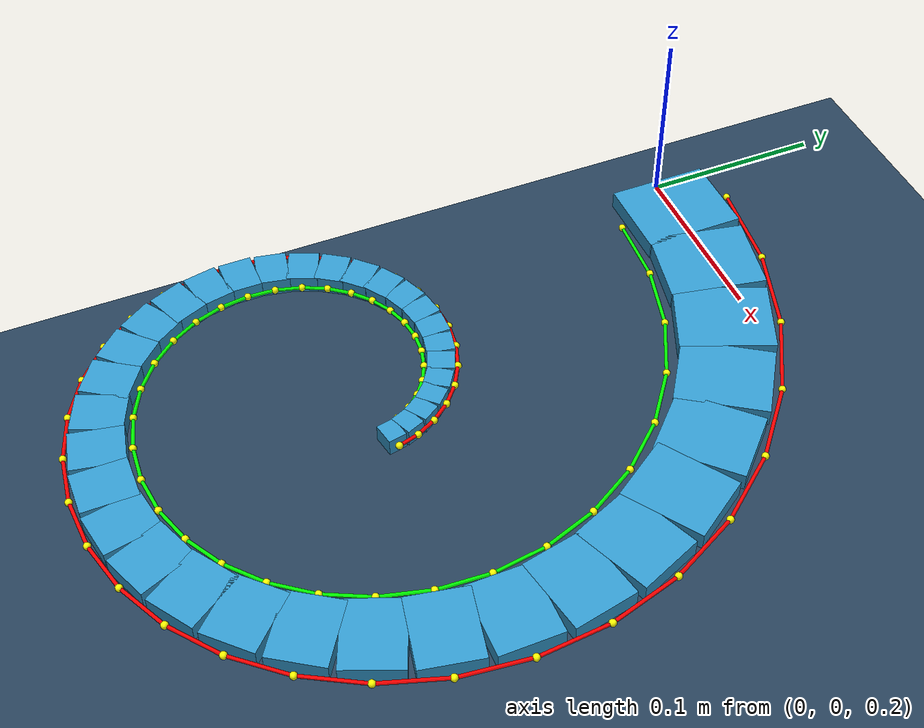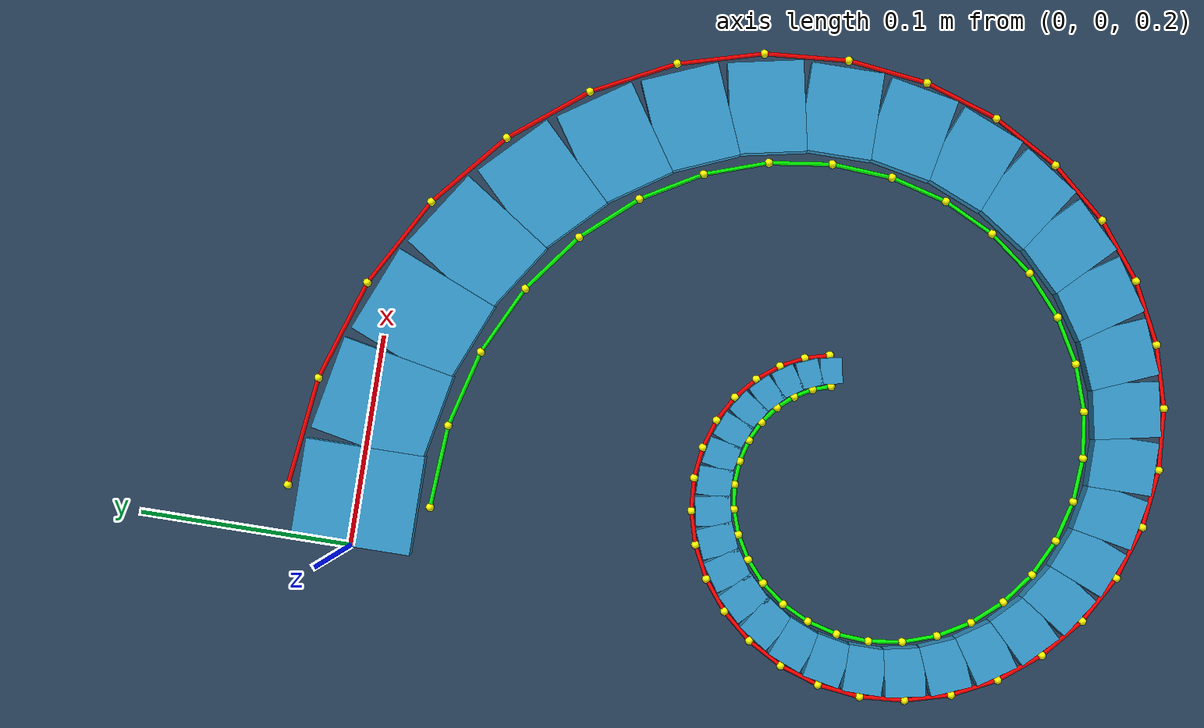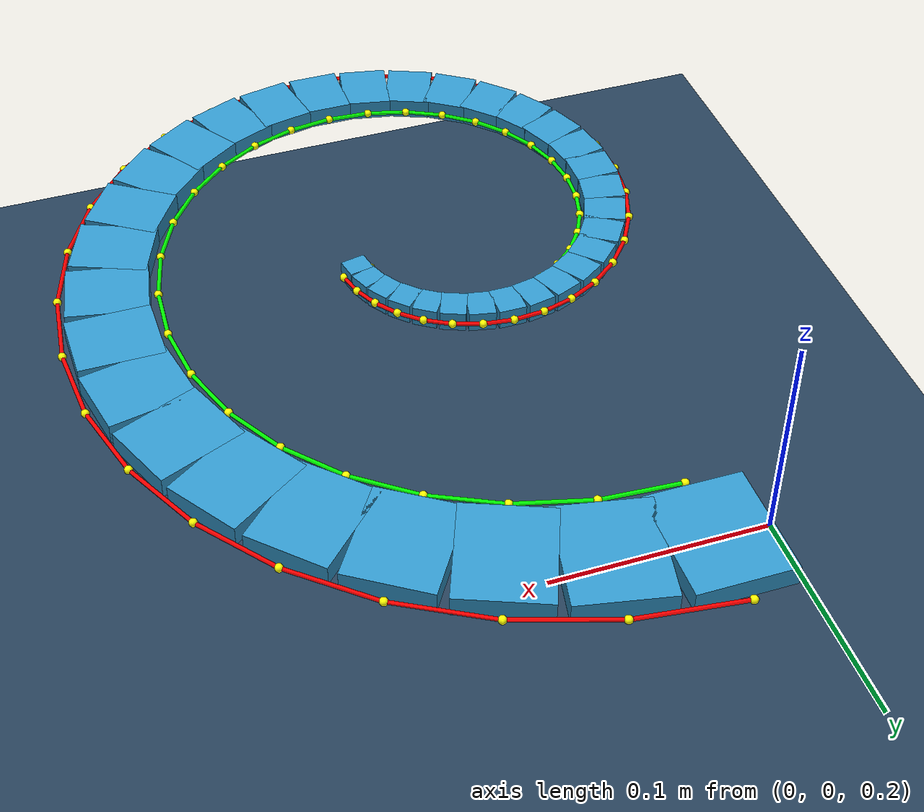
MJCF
<?xml version="1.0" ?>
<mujoco model="spirob_reversed">
  <option timestep="0.002" gravity="0 0 -9.81"/>
  <asset>
    <texture name="grid" type="2d" builtin="checker" rgb1=".1 .2 .3" rgb2=".2 .3 .4" width="300" height="300"/>
    <material name="grid" texture="grid" texrepeat="1 1" reflectance="0.2"/>
  </asset>
  <default>
    <geom friction="0.5" solimp="0.9 0.95 0.001" solref="0.02 1"/>
    <joint type="hinge" axis="0 0 1" stiffness="2.0" damping="0.2" limited="true" range="-30 30"/>
  </default>
  <worldbody>
    <geom name="floor" type="plane" size="2 2 0.1" material="grid"/>
    <light diffuse=".5 .5 .5" pos="0 0 3" dir="0 0 -1"/>
    <body name="base" pos="0 0 0.2">
      <body name="seg_0" pos="0 0 0" euler="0 0 0.0">
        <joint name="j_0"/>
        <geom type="box" size="0.023576399697969007 0.028291679637562808 0.005" pos="0.023576399697969007 0 0" rgba="0.2 0.6 0.8 1"/>
        <site name="s1_0" pos="0.023576399697969007 0.03395001556507537 0" size="0.002" rgba="1 1 0 1"/>
        <site name="s2_0" pos="0.023576399697969007 -0.03395001556507537 0" size="0.002" rgba="1 1 0 1"/>
        <body name="seg_1" pos="0.047152799395938014 0 0" euler="0 0 -11.250000000000044">
          <joint name="j_1"/>
          <geom type="box" size="0.022668499889541775 0.02720219986745013 0.005" pos="0.022668499889541775 0 0" rgba="0.2 0.6 0.8 1"/>
          <site name="s1_1" pos="0.022668499889541775 0.03264263984094015 0" size="0.002" rgba="1 1 0 1"/>
          <site name="s2_1" pos="0.022668499889541775 -0.03264263984094015 0" size="0.002" rgba="1 1 0 1"/>
          <body name="seg_2" pos="0.04533699977908355 0 0" euler="0 0 -11.249999999999908">
            <joint name="j_2"/>
            <geom type="box" size="0.0217955622497535 0.0261546746997042 0.005" pos="0.0217955622497535 0 0" rgba="0.2 0.6 0.8 1"/>
            <site name="s1_2" pos="0.0217955622497535 0.03138560963964504 0" size="0.002" rgba="1 1 0 1"/>
            <site name="s2_2" pos="0.0217955622497535 -0.03138560963964504 0" size="0.002" rgba="1 1 0 1"/>
            <body name="seg_3" pos="0.043591124499507 0 0" euler="0 0 -11.250000000000146">
              <joint name="j_3"/>
              <geom type="box" size="0.020956240426039375 0.02514748851124725 0.005" pos="0.020956240426039375 0 0" rgba="0.2 0.6 0.8 1"/>
              <site name="s1_3" pos="0.020956240426039375 0.030176986213496695 0" size="0.002" rgba="1 1 0 1"/>
              <site name="s2_3" pos="0.020956240426039375 -0.030176986213496695 0" size="0.002" rgba="1 1 0 1"/>
              <body name="seg_4" pos="0.04191248085207875 0 0" euler="0 0 -11.249999999999917">
                <joint name="j_4"/>
                <geom type="box" size="0.02014923991230974 0.02417908789477169 0.005" pos="0.02014923991230974 0 0" rgba="0.2 0.6 0.8 1"/>
                <site name="s1_4" pos="0.02014923991230974 0.029014905473726024 0" size="0.002" rgba="1 1 0 1"/>
                <site name="s2_4" pos="0.02014923991230974 -0.029014905473726024 0" size="0.002" rgba="1 1 0 1"/>
                <body name="seg_5" pos="0.04029847982461948 0 0" euler="0 0 -11.249999999999961">
                  <joint name="j_5"/>
                  <geom type="box" size="0.019373316052403416 0.0232479792628841 0.005" pos="0.019373316052403416 0 0" rgba="0.2 0.6 0.8 1"/>
                  <site name="s1_5" pos="0.019373316052403416 0.027897575115460916 0" size="0.002" rgba="1 1 0 1"/>
                  <site name="s2_5" pos="0.019373316052403416 -0.027897575115460916 0" size="0.002" rgba="1 1 0 1"/>
                  <body name="seg_6" pos="0.03874663210480683 0 0" euler="0 0 -11.250000000000012">
                    <joint name="j_6"/>
                    <geom type="box" size="0.018627272120424667 0.0223527265445096 0.005" pos="0.018627272120424667 0 0" rgba="0.2 0.6 0.8 1"/>
                    <site name="s1_6" pos="0.018627272120424667 0.02682327185341152 0" size="0.002" rgba="1 1 0 1"/>
                    <site name="s2_6" pos="0.018627272120424667 -0.02682327185341152 0" size="0.002" rgba="1 1 0 1"/>
                    <body name="seg_7" pos="0.037254544240849334 0 0" euler="0 0 -11.250000000000101">
                      <joint name="j_7"/>
                      <geom type="box" size="0.017909957475003548 0.021491948970004258 0.005" pos="0.017909957475003548 0 0" rgba="0.2 0.6 0.8 1"/>
                      <site name="s1_7" pos="0.017909957475003548 0.02579033876400511 0" size="0.002" rgba="1 1 0 1"/>
                      <site name="s2_7" pos="0.017909957475003548 -0.02579033876400511 0" size="0.002" rgba="1 1 0 1"/>
                      <body name="seg_8" pos="0.035819914950007095 0 0" euler="0 0 -11.249999999999847">
                        <joint name="j_8"/>
                        <geom type="box" size="0.017220265784635036 0.02066431894156204 0.005" pos="0.017220265784635036 0 0" rgba="0.2 0.6 0.8 1"/>
                        <site name="s1_8" pos="0.017220265784635036 0.02479718272987445 0" size="0.002" rgba="1 1 0 1"/>
                        <site name="s2_8" pos="0.017220265784635036 -0.02479718272987445 0" size="0.002" rgba="1 1 0 1"/>
                        <body name="seg_9" pos="0.03444053156927007 0 0" euler="0 0 -11.250000000000101">
                          <joint name="j_9"/>
                          <geom type="box" size="0.016557133321357238 0.019868559985628684 0.005" pos="0.016557133321357238 0 0" rgba="0.2 0.6 0.8 1"/>
                          <site name="s1_9" pos="0.016557133321357238 0.02384227198275442 0" size="0.002" rgba="1 1 0 1"/>
                          <site name="s2_9" pos="0.016557133321357238 -0.02384227198275442 0" size="0.002" rgba="1 1 0 1"/>
                          <body name="seg_10" pos="0.033114266642714475 0 0" euler="0 0 -11.250000000000037">
                            <joint name="j_10"/>
                            <geom type="box" size="0.015919537320138233 0.01910344478416588 0.005" pos="0.015919537320138233 0 0" rgba="0.2 0.6 0.8 1"/>
                            <site name="s1_10" pos="0.015919537320138233 0.022924133740999053 0" size="0.002" rgba="1 1 0 1"/>
                            <site name="s2_10" pos="0.015919537320138233 -0.022924133740999053 0" size="0.002" rgba="1 1 0 1"/>
                            <body name="seg_11" pos="0.031839074640276466 0 0" euler="0 0 -11.249999999999936">
                              <joint name="j_11"/>
                              <geom type="box" size="0.015306494401441578 0.018367793281729893 0.005" pos="0.015306494401441578 0 0" rgba="0.2 0.6 0.8 1"/>
                              <site name="s1_11" pos="0.015306494401441578 0.02204135193807587 0" size="0.002" rgba="1 1 0 1"/>
                              <site name="s2_11" pos="0.015306494401441578 -0.02204135193807587 0" size="0.002" rgba="1 1 0 1"/>
                              <body name="seg_12" pos="0.030612988802883156 0 0" euler="0 0 -11.249999999999988">
                                <joint name="j_12"/>
                                <geom type="box" size="0.014717059054535802 0.01766047086544296 0.005" pos="0.014717059054535802 0 0" rgba="0.2 0.6 0.8 1"/>
                                <site name="s1_12" pos="0.014717059054535802 0.021192565038531553 0" size="0.002" rgba="1 1 0 1"/>
                                <site name="s2_12" pos="0.014717059054535802 -0.021192565038531553 0" size="0.002" rgba="1 1 0 1"/>
                                <body name="seg_13" pos="0.029434118109071605 0 0" euler="0 0 -11.249999999999936">
                                  <joint name="j_13"/>
                                  <geom type="box" size="0.014150322179211373 0.016980386615053647 0.005" pos="0.014150322179211373 0 0" rgba="0.2 0.6 0.8 1"/>
                                  <site name="s1_13" pos="0.014150322179211373 0.020376463938064377 0" size="0.002" rgba="1 1 0 1"/>
                                  <site name="s2_13" pos="0.014150322179211373 -0.020376463938064377 0" size="0.002" rgba="1 1 0 1"/>
                                  <body name="seg_14" pos="0.028300644358422746 0 0" euler="0 0 -11.250000000000064">
                                    <joint name="j_14"/>
                                    <geom type="box" size="0.013605409683653594 0.016326491620384312 0.005" pos="0.013605409683653594 0 0" rgba="0.2 0.6 0.8 1"/>
                                    <site name="s1_14" pos="0.013605409683653594 0.019591789944461174 0" size="0.002" rgba="1 1 0 1"/>
                                    <site name="s2_14" pos="0.013605409683653594 -0.019591789944461174 0" size="0.002" rgba="1 1 0 1"/>
                                    <body name="seg_15" pos="0.02721081936730719 0 0" euler="0 0 348.74999999999994">
                                      <joint name="j_15"/>
                                      <geom type="box" size="0.013081481136309395 0.015697777363571273 0.005" pos="0.013081481136309395 0 0" rgba="0.2 0.6 0.8 1"/>
                                      <site name="s1_15" pos="0.013081481136309395 0.01883733283628553 0" size="0.002" rgba="1 1 0 1"/>
                                      <site name="s2_15" pos="0.013081481136309395 -0.01883733283628553 0" size="0.002" rgba="1 1 0 1"/>
                                      <body name="seg_16" pos="0.02616296227261879 0 0" euler="0 0 -11.249999999999911">
                                        <joint name="j_16"/>
                                        <geom type="box" size="0.012577728469670348 0.015093274163604417 0.005" pos="0.012577728469670348 0 0" rgba="0.2 0.6 0.8 1"/>
                                        <site name="s1_16" pos="0.012577728469670348 0.0181119289963253 0" size="0.002" rgba="1 1 0 1"/>
                                        <site name="s2_16" pos="0.012577728469670348 -0.0181119289963253 0" size="0.002" rgba="1 1 0 1"/>
                                        <body name="seg_17" pos="0.025155456939340695 0 0" euler="0 0 -11.249999999999988">
                                          <joint name="j_17"/>
                                          <geom type="box" size="0.012093374733970527 0.014512049680764631 0.005" pos="0.012093374733970527 0 0" rgba="0.2 0.6 0.8 1"/>
                                          <site name="s1_17" pos="0.012093374733970527 0.017414459616917555 0" size="0.002" rgba="1 1 0 1"/>
                                          <site name="s2_17" pos="0.012093374733970527 -0.017414459616917555 0" size="0.002" rgba="1 1 0 1"/>
                                          <body name="seg_18" pos="0.024186749467941054 0 0" euler="0 0 -11.250000000000012">
                                            <joint name="j_18"/>
                                            <geom type="box" size="0.011627672898878307 0.013953207478653968 0.005" pos="0.011627672898878307 0 0" rgba="0.2 0.6 0.8 1"/>
                                            <site name="s1_18" pos="0.011627672898878307 0.01674384897438476 0" size="0.002" rgba="1 1 0 1"/>
                                            <site name="s2_18" pos="0.011627672898878307 -0.01674384897438476 0" size="0.002" rgba="1 1 0 1"/>
                                            <body name="seg_19" pos="0.023255345797756614 0 0" euler="0 0 -11.249999999999988">
                                              <joint name="j_19"/>
                                              <geom type="box" size="0.011179904701333954 0.013415885641600744 0.005" pos="0.011179904701333954 0 0" rgba="0.2 0.6 0.8 1"/>
                                              <site name="s1_19" pos="0.011179904701333954 0.01609906276992089 0" size="0.002" rgba="1 1 0 1"/>
                                              <site name="s2_19" pos="0.011179904701333954 -0.01609906276992089 0" size="0.002" rgba="1 1 0 1"/>
                                              <body name="seg_20" pos="0.022359809402667907 0 0" euler="0 0 -11.250000000000064">
                                                <joint name="j_20"/>
                                                <geom type="box" size="0.010749379537754788 0.012899255445305745 0.005" pos="0.010749379537754788 0 0" rgba="0.2 0.6 0.8 1"/>
                                                <site name="s1_20" pos="0.010749379537754788 0.015479106534366894 0" size="0.002" rgba="1 1 0 1"/>
                                                <site name="s2_20" pos="0.010749379537754788 -0.015479106534366894 0" size="0.002" rgba="1 1 0 1"/>
                                                <body name="seg_21" pos="0.021498759075509577 0 0" euler="0 0 -11.249999999999961">
                                                  <joint name="j_21"/>
                                                  <geom type="box" size="0.010335433398901327 0.012402520078681591 0.005" pos="0.010335433398901327 0 0" rgba="0.2 0.6 0.8 1"/>
                                                  <site name="s1_21" pos="0.010335433398901327 0.01488302409441791 0" size="0.002" rgba="1 1 0 1"/>
                                                  <site name="s2_21" pos="0.010335433398901327 -0.01488302409441791 0" size="0.002" rgba="1 1 0 1"/>
                                                  <body name="seg_22" pos="0.020670866797802653 0 0" euler="0 0 -11.249999999999899">
                                                    <joint name="j_22"/>
                                                    <geom type="box" size="0.009937427845759881 0.011924913414911857 0.005" pos="0.009937427845759881 0 0" rgba="0.2 0.6 0.8 1"/>
                                                    <site name="s1_22" pos="0.009937427845759881 0.014309896097894228 0" size="0.002" rgba="1 1 0 1"/>
                                                    <site name="s2_22" pos="0.009937427845759881 -0.014309896097894228 0" size="0.002" rgba="1 1 0 1"/>
                                                    <body name="seg_23" pos="0.019874855691519762 0 0" euler="0 0 -11.250000000000153">
                                                      <joint name="j_23"/>
                                                      <geom type="box" size="0.009554749024862474 0.01146569882983497 0.005" pos="0.009554749024862474 0 0" rgba="0.2 0.6 0.8 1"/>
                                                      <site name="s1_23" pos="0.009554749024862474 0.013758838595801964 0" size="0.002" rgba="1 1 0 1"/>
                                                      <site name="s2_23" pos="0.009554749024862474 -0.013758838595801964 0" size="0.002" rgba="1 1 0 1"/>
                                                      <body name="seg_24" pos="0.01910949804972495 0 0" euler="0 0 -11.249999999999911">
                                                        <joint name="j_24"/>
                                                        <geom type="box" size="0.009186806721526388 0.011024168065831666 0.005" pos="0.009186806721526388 0 0" rgba="0.2 0.6 0.8 1"/>
                                                        <site name="s1_24" pos="0.009186806721526388 0.013229001678997999 0" size="0.002" rgba="1 1 0 1"/>
                                                        <site name="s2_24" pos="0.009186806721526388 -0.013229001678997999 0" size="0.002" rgba="1 1 0 1"/>
                                                        <body name="seg_25" pos="0.018373613443052775 0 0" euler="0 0 -11.250000000000089">
                                                          <joint name="j_25"/>
                                                          <geom type="box" size="0.008833033449551775 0.01059964013946213 0.005" pos="0.008833033449551775 0 0" rgba="0.2 0.6 0.8 1"/>
                                                          <site name="s1_25" pos="0.008833033449551775 0.012719568167354556 0" size="0.002" rgba="1 1 0 1"/>
                                                          <site name="s2_25" pos="0.008833033449551775 -0.012719568167354556 0" size="0.002" rgba="1 1 0 1"/>
                                                          <body name="seg_26" pos="0.01766606689910355 0 0" euler="0 0 -11.249999999999892">
                                                            <joint name="j_26"/>
                                                            <geom type="box" size="0.008492883575974122 0.010191460291168946 0.005" pos="0.008492883575974122 0 0" rgba="0.2 0.6 0.8 1"/>
                                                            <site name="s1_26" pos="0.008492883575974122 0.012229752349402734 0" size="0.002" rgba="1 1 0 1"/>
                                                            <site name="s2_26" pos="0.008492883575974122 -0.012229752349402734 0" size="0.002" rgba="1 1 0 1"/>
                                                            <body name="seg_27" pos="0.016985767151948244 0 0" euler="0 0 -11.250000000000064">
                                                              <joint name="j_27"/>
                                                              <geom type="box" size="0.00816583247952172 0.009798998975426064 0.005" pos="0.00816583247952172 0 0" rgba="0.2 0.6 0.8 1"/>
                                                              <site name="s1_27" pos="0.00816583247952172 0.011758798770511277 0" size="0.002" rgba="1 1 0 1"/>
                                                              <site name="s2_27" pos="0.00816583247952172 -0.011758798770511277 0" size="0.002" rgba="1 1 0 1"/>
                                                              <body name="seg_28" pos="0.01633166495904344 0 0" euler="0 0 -11.25">
                                                                <joint name="j_28"/>
                                                                <geom type="box" size="0.007851375741479347 0.009421650889775217 0.005" pos="0.007851375741479347 0 0" rgba="0.2 0.6 0.8 1"/>
                                                                <site name="s1_28" pos="0.007851375741479347 0.01130598106773026 0" size="0.002" rgba="1 1 0 1"/>
                                                                <site name="s2_28" pos="0.007851375741479347 -0.01130598106773026 0" size="0.002" rgba="1 1 0 1"/>
                                                                <body name="seg_29" pos="0.015702751482958695 0 0" euler="0 0 -11.249999999999936">
                                                                  <joint name="j_29"/>
                                                                  <geom type="box" size="0.007549028367711576 0.009058834041253891 0.005" pos="0.007549028367711576 0 0" rgba="0.2 0.6 0.8 1"/>
                                                                  <site name="s1_29" pos="0.007549028367711576 0.010870600849504669 0" size="0.002" rgba="1 1 0 1"/>
                                                                  <site name="s2_29" pos="0.007549028367711576 -0.010870600849504669 0" size="0.002" rgba="1 1 0 1"/>
                                                                  <body name="seg_30" pos="0.015098056735423152 0 0" euler="0 0 -11.250000000000032">
                                                                    <joint name="j_30"/>
                                                                    <geom type="box" size="0.007258324040644766 0.00870998884877372 0.005" pos="0.007258324040644766 0 0" rgba="0.2 0.6 0.8 1"/>
                                                                    <site name="s1_30" pos="0.007258324040644766 0.010451986618528463 0" size="0.002" rgba="1 1 0 1"/>
                                                                    <site name="s2_30" pos="0.007258324040644766 -0.010451986618528463 0" size="0.002" rgba="1 1 0 1"/>
                                                                    <body name="seg_31" pos="0.014516648081289532 0 0" euler="0 0 -11.250000000000032">
                                                                      <joint name="j_31"/>
                                                                      <geom type="box" size="0.0069788144000539724 0.008374577280064766 0.005" pos="0.0069788144000539724 0 0" rgba="0.2 0.6 0.8 1"/>
                                                                      <site name="s1_31" pos="0.0069788144000539724 0.010049492736077718 0" size="0.002" rgba="1 1 0 1"/>
                                                                      <site name="s2_31" pos="0.0069788144000539724 -0.010049492736077718 0" size="0.002" rgba="1 1 0 1"/>
                                                                      <body name="seg_32" pos="0.013957628800107945 0 0" euler="0 0 -11.250000000000036">
                                                                        <joint name="j_32"/>
                                                                        <geom type="box" size="0.0067100683515466586 0.00805208202185599 0.005" pos="0.0067100683515466586 0 0" rgba="0.2 0.6 0.8 1"/>
                                                                        <site name="s1_32" pos="0.0067100683515466586 0.009662498426227187 0" size="0.002" rgba="1 1 0 1"/>
                                                                        <site name="s2_32" pos="0.0067100683515466586 -0.009662498426227187 0" size="0.002" rgba="1 1 0 1"/>
                                                                        <body name="seg_33" pos="0.013420136703093317 0 0" euler="0 0 -11.249999999999927">
                                                                          <joint name="j_33"/>
                                                                          <geom type="box" size="0.0064516714016753145 0.007742005682010377 0.005" pos="0.0064516714016753145 0 0" rgba="0.2 0.6 0.8 1"/>
                                                                          <site name="s1_33" pos="0.0064516714016753145 0.009290406818412452 0" size="0.002" rgba="1 1 0 1"/>
                                                                          <site name="s2_33" pos="0.0064516714016753145 -0.009290406818412452 0" size="0.002" rgba="1 1 0 1"/>
                                                                          <body name="seg_34" pos="0.012903342803350629 0 0" euler="0 0 -11.250000000000025">
                                                                            <joint name="j_34"/>
                                                                            <geom type="box" size="0.006203225018654344 0.007443870022385213 0.005" pos="0.006203225018654344 0 0" rgba="0.2 0.6 0.8 1"/>
                                                                            <site name="s1_34" pos="0.006203225018654344 0.008932644026862255 0" size="0.002" rgba="1 1 0 1"/>
                                                                            <site name="s2_34" pos="0.006203225018654344 -0.008932644026862255 0" size="0.002" rgba="1 1 0 1"/>
                                                                            <body name="seg_35" pos="0.012406450037308689 0 0" euler="0 0 -11.24999999999998">
                                                                              <joint name="j_35"/>
                                                                              <geom type="box" size="0.0059643460176950994 0.007157215221234119 0.005" pos="0.0059643460176950994 0 0" rgba="0.2 0.6 0.8 1"/>
                                                                              <site name="s1_35" pos="0.0059643460176950994 0.008588658265480944 0" size="0.002" rgba="1 1 0 1"/>
                                                                              <site name="s2_35" pos="0.0059643460176950994 -0.008588658265480944 0" size="0.002" rgba="1 1 0 1"/>
                                                                              <body name="seg_36" pos="0.011928692035390199 0 0" euler="0 0 -11.250000000000052">
                                                                                <joint name="j_36"/>
                                                                                <geom type="box" size="0.005734665970010571 0.006881599164012685 0.005" pos="0.005734665970010571 0 0" rgba="0.2 0.6 0.8 1"/>
                                                                                <site name="s1_36" pos="0.005734665970010571 0.008257918996815222 0" size="0.002" rgba="1 1 0 1"/>
                                                                                <site name="s2_36" pos="0.005734665970010571 -0.008257918996815222 0" size="0.002" rgba="1 1 0 1"/>
                                                                                <body name="seg_37" pos="0.011469331940021142 0 0" euler="0 0 -11.249999999999899">
                                                                                  <joint name="j_37"/>
                                                                                  <geom type="box" size="0.0055138306345791 0.00661659676149492 0.005" pos="0.0055138306345791 0 0" rgba="0.2 0.6 0.8 1"/>
                                                                                  <site name="s1_37" pos="0.0055138306345791 0.007939916113793903 0" size="0.002" rgba="1 1 0 1"/>
                                                                                  <site name="s2_37" pos="0.0055138306345791 -0.007939916113793903 0" size="0.002" rgba="1 1 0 1"/>
                                                                                  <body name="seg_38" pos="0.0110276612691582 0 0" euler="0 0 -11.250000000000089">
                                                                                    <joint name="j_38"/>
                                                                                    <geom type="box" size="0.005301499411790016 0.006361799294148019 0.005" pos="0.005301499411790016 0 0" rgba="0.2 0.6 0.8 1"/>
                                                                                    <site name="s1_38" pos="0.005301499411790016 0.0076341591529776225 0" size="0.002" rgba="1 1 0 1"/>
                                                                                    <site name="s2_38" pos="0.005301499411790016 -0.0076341591529776225 0" size="0.002" rgba="1 1 0 1"/>
                                                                                    <body name="seg_39" pos="0.010602998823580031 0 0" euler="0 0 -11.249999999999961">
                                                                                      <joint name="j_39"/>
                                                                                      <geom type="box" size="0.00509734481812846 0.006116813781754152 0.005" pos="0.00509734481812846 0 0" rgba="0.2 0.6 0.8 1"/>
                                                                                      <site name="s1_39" pos="0.00509734481812846 0.007340176538104983 0" size="0.002" rgba="1 1 0 1"/>
                                                                                      <site name="s2_39" pos="0.00509734481812846 -0.007340176538104983 0" size="0.002" rgba="1 1 0 1"/>
                                                                                    </body>
                                                                                  </body>
                                                                                </body>
                                                                              </body>
                                                                            </body>
                                                                          </body>
                                                                        </body>
                                                                      </body>
                                                                    </body>
                                                                  </body>
                                                                </body>
                                                              </body>
                                                            </body>
                                                          </body>
                                                        </body>
                                                      </body>
                                                    </body>
                                                  </body>
                                                </body>
                                              </body>
                                            </body>
                                          </body>
                                        </body>
                                      </body>
                                    </body>
                                  </body>
                                </body>
                              </body>
                            </body>
                          </body>
                        </body>
                      </body>
                    </body>
                  </body>
                </body>
              </body>
            </body>
          </body>
        </body>
      </body>
    </body>
  </worldbody>
  <tendon>
    <spatial name="cable_left" width="0.001" rgba="1 0 0 1">
      <site site="s1_0"/>
      <site site="s1_1"/>
      <site site="s1_2"/>
      <site site="s1_3"/>
      <site site="s1_4"/>
      <site site="s1_5"/>
      <site site="s1_6"/>
      <site site="s1_7"/>
      <site site="s1_8"/>
      <site site="s1_9"/>
      <site site="s1_10"/>
      <site site="s1_11"/>
      <site site="s1_12"/>
      <site site="s1_13"/>
      <site site="s1_14"/>
      <site site="s1_15"/>
      <site site="s1_16"/>
      <site site="s1_17"/>
      <site site="s1_18"/>
      <site site="s1_19"/>
      <site site="s1_20"/>
      <site site="s1_21"/>
      <site site="s1_22"/>
      <site site="s1_23"/>
      <site site="s1_24"/>
      <site site="s1_25"/>
      <site site="s1_26"/>
      <site site="s1_27"/>
      <site site="s1_28"/>
      <site site="s1_29"/>
      <site site="s1_30"/>
      <site site="s1_31"/>
      <site site="s1_32"/>
      <site site="s1_33"/>
      <site site="s1_34"/>
      <site site="s1_35"/>
      <site site="s1_36"/>
      <site site="s1_37"/>
      <site site="s1_38"/>
      <site site="s1_39"/>
    </spatial>
    <spatial name="cable_right" width="0.001" rgba="0 1 0 1">
      <site site="s2_0"/>
      <site site="s2_1"/>
      <site site="s2_2"/>
      <site site="s2_3"/>
      <site site="s2_4"/>
      <site site="s2_5"/>
      <site site="s2_6"/>
      <site site="s2_7"/>
      <site site="s2_8"/>
      <site site="s2_9"/>
      <site site="s2_10"/>
      <site site="s2_11"/>
      <site site="s2_12"/>
      <site site="s2_13"/>
      <site site="s2_14"/>
      <site site="s2_15"/>
      <site site="s2_16"/>
      <site site="s2_17"/>
      <site site="s2_18"/>
      <site site="s2_19"/>
      <site site="s2_20"/>
      <site site="s2_21"/>
      <site site="s2_22"/>
      <site site="s2_23"/>
      <site site="s2_24"/>
      <site site="s2_25"/>
      <site site="s2_26"/>
      <site site="s2_27"/>
      <site site="s2_28"/>
      <site site="s2_29"/>
      <site site="s2_30"/>
      <site site="s2_31"/>
      <site site="s2_32"/>
      <site site="s2_33"/>
      <site site="s2_34"/>
      <site site="s2_35"/>
      <site site="s2_36"/>
      <site site="s2_37"/>
      <site site="s2_38"/>
      <site site="s2_39"/>
    </spatial>
  </tendon>
  <actuator>
    <position name="act_left" tendon="cable_left" kp="20" kv="1" gear="1" ctrlrange="-0.3 0"/>
    <position name="act_right" tendon="cable_right" kp="20" kv="1" gear="1" ctrlrange="-0.3 0"/>
  </actuator>
</mujoco>
